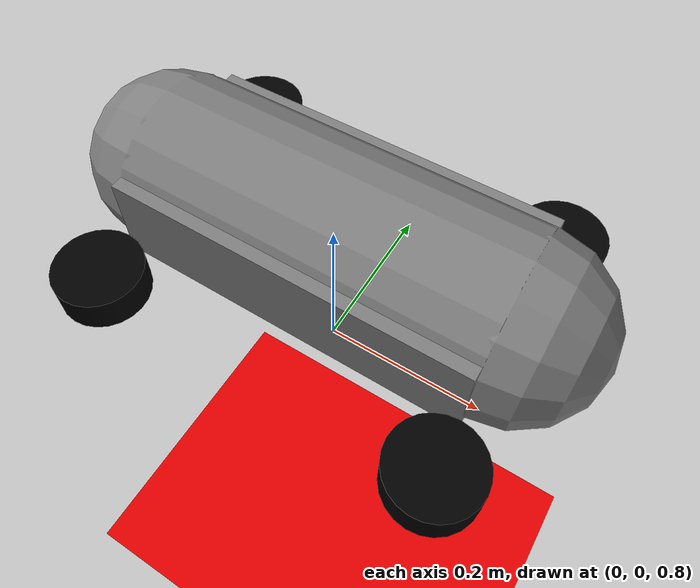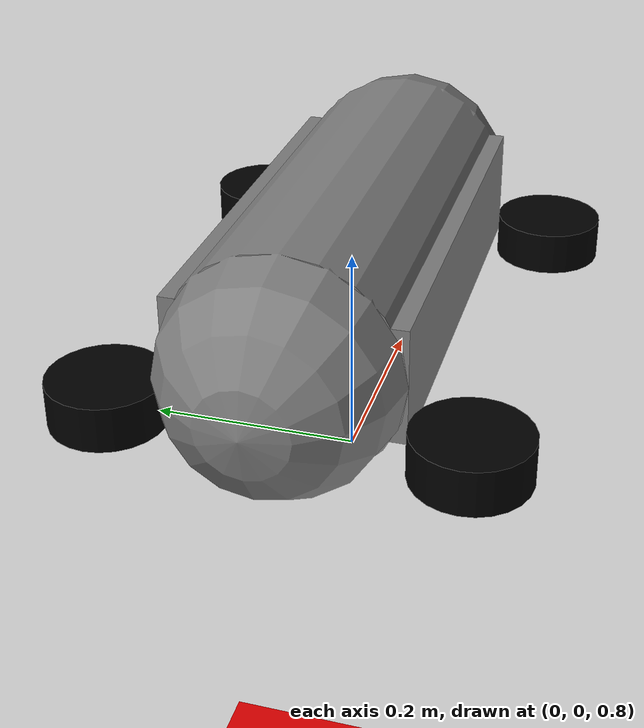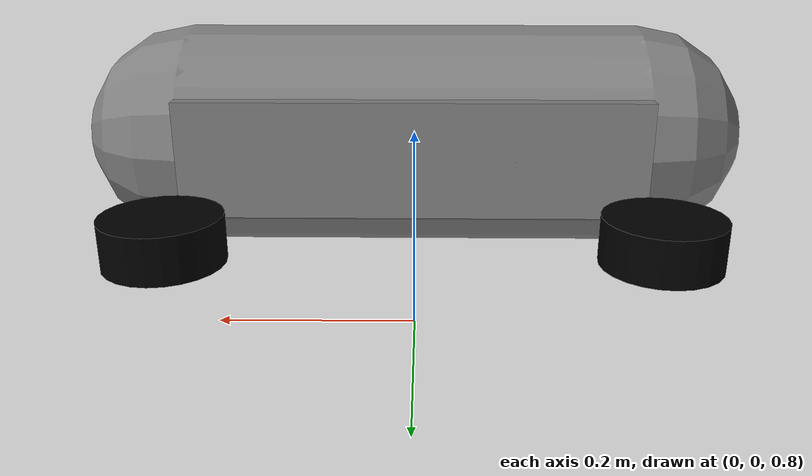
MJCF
<mujoco>
    <worldbody>
        <light diffuse=".5 .5 .5" pos="0 0 2" dir="0 -1 0"/>
        <geom type="plane" size="1 1 0.1" rgba=".9 0 0 1"/>

        <body pos="0 0 1">
            <joint type="free"/>
            <!-- Body of the car -->
            <geom type="capsule" fromto="0.2 0 0 -0.2 0 0" size="0.1" rgba="0.5 0.5 0.5 1"/>
            <geom type="box" size="0.2 0.1 0.05" rgba="0.5 0.5 0.5 1"/>

            <!-- Wheels -->
            <!-- Adjust the size and position to make them look more realistic -->
            <body pos="0.2 0.15 -0.05">
                <joint name="front_left_wheel_joint" type="hinge" axis="0 1 0"/>
                <geom type="cylinder" size="0.05 0.02" rgba="0 0 0 1"/>
            </body>
            <body pos="0.2 -0.15 -0.05">
                <joint name="front_right_wheel_joint" type="hinge" axis="0 1 0"/>
                <geom type="cylinder" size="0.05 0.02" rgba="0 0 0 1"/>
            </body>
            <body pos="-0.2 0.15 -0.05">
                <joint name="rear_left_wheel_joint" type="hinge" axis="0 1 0"/>
                <geom type="cylinder" size="0.05 0.02" rgba="0 0 0 1"/>
            </body>
            <body pos="-0.2 -0.15 -0.05">
                <joint name="rear_right_wheel_joint" type="hinge" axis="0 1 0"/>
                <geom type="cylinder" size="0.05 0.02" rgba="0 0 0 1"/>
            </body>
        </body>
    </worldbody>

    <actuator>
        <motor joint="front_left_wheel_joint" name="motor_front_left" />
        <motor joint="front_right_wheel_joint" name="motor_front_right" />
        <motor joint="rear_left_wheel_joint" name="motor_rear_left" />
        <motor joint="rear_right_wheel_joint" name="motor_rear_right" />
    </actuator>
</mujoco>
